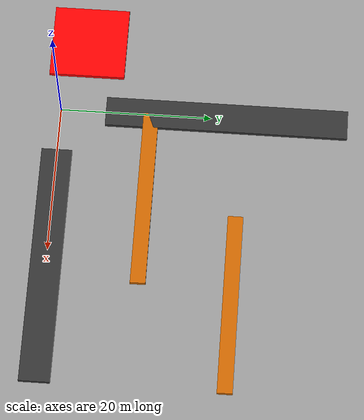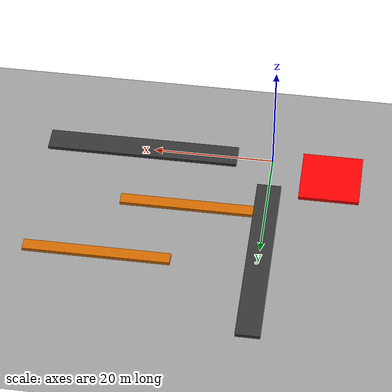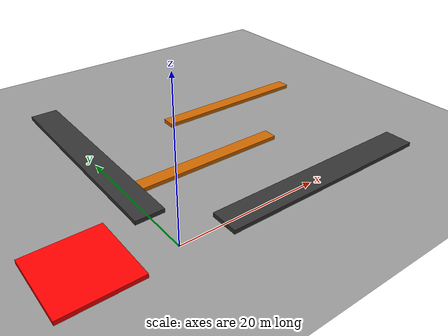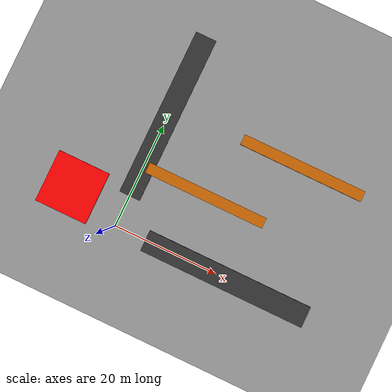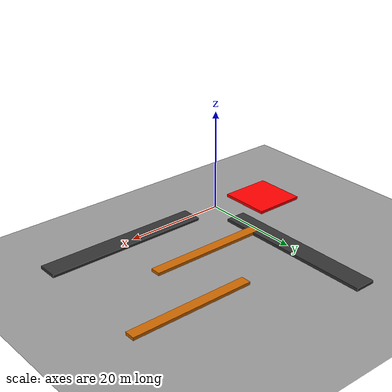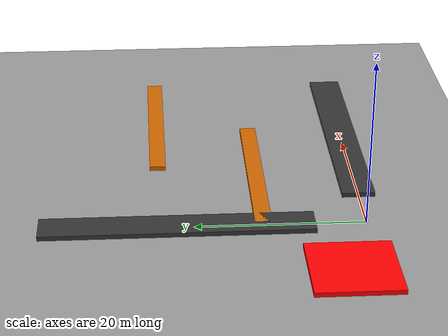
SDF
<sdf version="1.9">
 <world name="default">
  <physics type="ode">
   <max_step_size>0.01</max_step_size>
   <real_time_update_rate>60</real_time_update_rate>
  </physics>
  <model name="ground_plane">
   <static>true</static>
   <link name="link">
    <collision name="collision">
     <geometry><plane><normal>0 0 1</normal><size>100 100</size></plane></geometry>
     <surface><contact><collide_without_contact_bitmask>0x01</collide_without_contact_bitmask></contact></surface>
    </collision>
    <visual name="visual">
     <geometry><plane><normal>0 0 1</normal><size>100 100</size></plane></geometry>
     <material><ambient>0.6 0.6 0.6 1</ambient><diffuse>0.6 0.6 0.6 1</diffuse></material>
    </visual>
   </link>
  </model>
  <model name="prison_south">
   <pose>22.0 0.0 0 0 0 0</pose>
   <link name="wall_link">
    <gravity>false</gravity>
    <visual name="visual">
     <geometry><box><size>32.0 4.0 1.0</size></box></geometry>
     <material><ambient>0.2 0.2 0.2 1</ambient></material>
    </visual>
   </link>
  </model>
  <model name="prison_west">
   <pose>0.0 22.0 0 0 0 0</pose>
   <link name="wall_link">
    <gravity>false</gravity>
    <visual name="visual">
     <geometry><box><size>4.0 32.0 1.0</size></box></geometry>
     <material><ambient>0.2 0.2 0.2 1</ambient></material>
    </visual>
   </link>
  </model>
  <model name="baffle_1">
   <pose>12.0 12.0 0 0 0 0</pose>
   <link name="wall_link">
    <gravity>false</gravity>
    <visual name="visual">
     <geometry><box><size>24.0 2.0 1.0</size></box></geometry>
     <material><ambient>0.8 0.4 0.0 1</ambient></material>
    </visual>
   </link>
  </model>
  <model name="baffle_2">
   <pose>26.0 24.0 0 0 0 0</pose>
   <link name="wall_link">
    <gravity>false</gravity>
    <visual name="visual">
     <geometry><box><size>24.0 2.0 1.0</size></box></geometry>
     <material><ambient>0.8 0.4 0.0 1</ambient></material>
    </visual>
   </link>
  </model>
  <model name="dynamic_plug_titan">
   <pose>-10.0 3.0 0 0 0 0</pose>
   <link name="moving_link">
    <gravity>false</gravity>
    <visual name="visual">
     <geometry><box><size>10.0 10.0 1.0</size></box></geometry>
     <material><ambient>1 0 0 1</ambient></material>
    </visual>
   </link>
   <plugin name="MoverPluginC" filename="/home/sohail/gazeb/GAZEBO_MOV/build/libMoverPluginC.so">
    <link_name>moving_link</link_name>
    <direction>1 0 0</direction>
    <amplitude>11.0</amplitude>
    <speed>6.0</speed>
    <turnaround_threshold>0.5</turnaround_threshold>
   </plugin>
  </model>
 </world>
</sdf>
